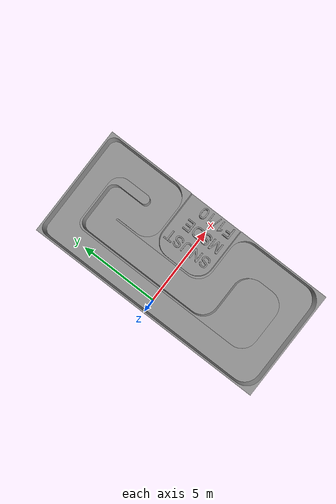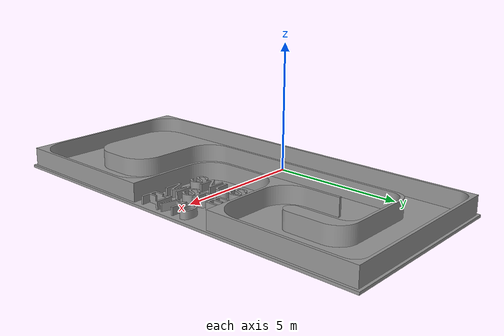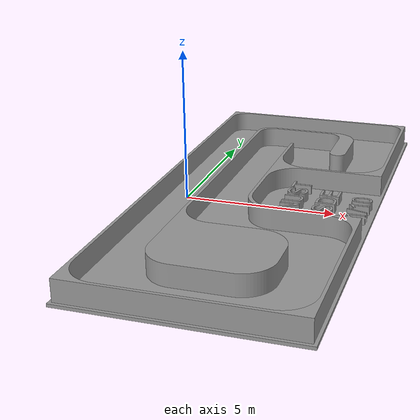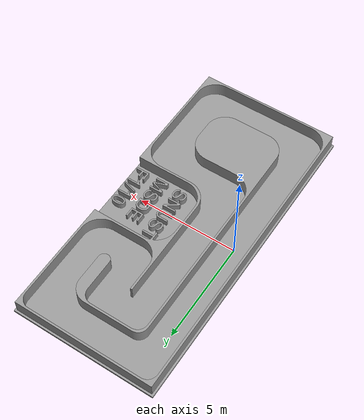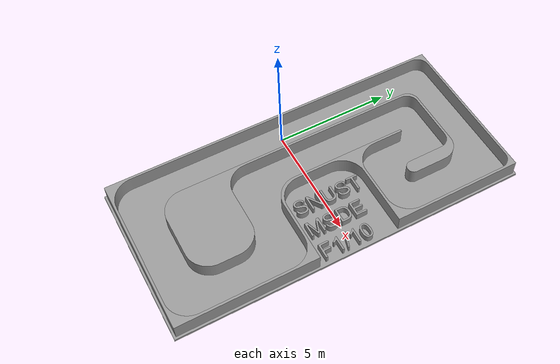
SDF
<?xml version="1.0"?>
<sdf version="1.4">
<world name="track_porto">

  <scene>
    <ambient>0.5 0.5 0.5 1.0</ambient>
    <shadows>0</shadows>
  </scene>

  <include>
    <uri>model://sun</uri>
    <pose>0.0 0.0 15.0 0 0 0</pose>
    <cast_shadows>false</cast_shadows>
    <attenuation>
      <constant>0.5</constant>
      <linear>0.01</linear>
      <quadratic>0.0</quadratic>
      <range>100</range>
    </attenuation>
  </include>

  <light type="point" name="Light 1">
              <pose>0 0 15 0 0 0</pose>
              <diffuse>.9 .9 .9 1</diffuse>
              <specular>.1 .1 .1 1</specular>
              <attenuation>
              <constant>0.5</constant>
              <linear>0.01</linear>
              <quadratic>0.0</quadratic>
              <range>50</range>
              </attenuation>
              <direction>0 0 -1</direction>
              <cast_shadows>false</cast_shadows>
  </light>

  <include>
    <uri>model://models/italy_track</uri>
    <pose>0 0 0 0 0 0</pose>
    <name>porto_track</name>
  </include>

</world>
</sdf>

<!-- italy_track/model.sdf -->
<sdf version='1.6'>
  <model name='italy_track'>
    <link name='ground'>
      <pose frame=''>0 0 0 0 -0 0</pose>
      <inertial>
        <mass>1</mass>
        <inertia>
          <ixx>0.166667</ixx>
          <ixy>0</ixy>
          <ixz>0</ixz>
          <iyy>0.166667</iyy>
          <iyz>0</iyz>
          <izz>0.166667</izz>
        </inertia>
        <pose frame=''>0 0 0 0 -0 0</pose>
      </inertial>
      <gravity>1</gravity>
      <self_collide>0</self_collide>
      <kinematic>0</kinematic>
      <visual name='visual'>
        <pose frame=''>-0.8 -7.6 0 0 -0 0</pose>
        <geometry>
          <mesh>
            <uri>file://meshes/ground2.dae</uri>
            <scale>0.01 0.01 0.01</scale>
          </mesh>
        </geometry>
        <material>
          <lighting>1</lighting>
          <script>
            <uri>file://media/materials/scripts/gazebo.material</uri>
            <name>Gazebo/Gray</name>
          </script>
          <ambient>0 0 0 1</ambient>
          <diffuse>0 0 0 1</diffuse>
          <specular>0.01 0.01 0.01 1</specular>
          <emissive>0 0 0 1</emissive>
          <shader type='vertex'>
            <normal_map>__default__</normal_map>
          </shader>
        </material>
        <cast_shadows>1</cast_shadows>
        <transparency>0</transparency>
      </visual>
      <collision name='collision'>
        <laser_retro>0</laser_retro>
        <max_contacts>10</max_contacts>
        <pose frame=''>-0.8 -7.6 0 0 -0 0</pose>
        <geometry>
          <mesh>
            <uri>file://meshes/ground2.dae</uri>
            <scale>0.01 0.01 0.01</scale>
          </mesh>
        </geometry>
        <surface>
          <friction>
            <ode>
              <mu>1</mu>
              <mu2>1</mu2>
              <fdir1>0 0 0</fdir1>
              <slip1>0</slip1>
              <slip2>0</slip2>
            </ode>
            <torsional>
              <coefficient>1</coefficient>
              <patch_radius>0</patch_radius>
              <surface_radius>0</surface_radius>
              <use_patch_radius>1</use_patch_radius>
              <ode>
                <slip>0</slip>
              </ode>
            </torsional>
          </friction>
          <bounce>
            <restitution_coefficient>0</restitution_coefficient>
            <threshold>1e+06</threshold>
          </bounce>
          <contact>
            <collide_without_contact>0</collide_without_contact>
            <collide_without_contact_bitmask>1</collide_without_contact_bitmask>
            <collide_bitmask>1</collide_bitmask>
            <ode>
              <soft_cfm>0</soft_cfm>
              <soft_erp>0.2</soft_erp>
              <kp>1e+13</kp>
              <kd>1</kd>
              <max_vel>0.01</max_vel>
              <min_depth>0</min_depth>
            </ode>
            <bullet>
              <split_impulse>1</split_impulse>
              <split_impulse_penetration_threshold>-0.01</split_impulse_penetration_threshold>
              <soft_cfm>0</soft_cfm>
              <soft_erp>0.2</soft_erp>
              <kp>1e+13</kp>
              <kd>1</kd>
            </bullet>
          </contact>
        </surface>
      </collision>
    </link>
    <link name='track'>
      <pose frame=''>0 0 0 0 -0 0</pose>
      <inertial>
        <mass>1</mass>
        <inertia>
          <ixx>0.166667</ixx>
          <ixy>0</ixy>
          <ixz>0</ixz>
          <iyy>0.166667</iyy>
          <iyz>0</iyz>
          <izz>0.166667</izz>
        </inertia>
        <pose frame=''>0 0 0 0 -0 0</pose>
      </inertial>
      <gravity>1</gravity>
      <self_collide>0</self_collide>
      <kinematic>0</kinematic>
      <visual name='visual'>
        <pose frame=''>-0.8 -7.6 0 0 -0 0</pose>
        <geometry>
          <mesh>
            <uri>file://meshes/italy_track_15.dae</uri>
            <scale>0.01 0.01 0.01</scale>
          </mesh>
        </geometry>
        <material>
          <lighting>1</lighting>
          <script>
            <uri>file://media/materials/scripts/gazebo.material</uri>
            <name>Gazebo/Grey</name>
          </script>
          <ambient>0.3 0.3 0.3 1</ambient>
          <diffuse>0.7 0.7 0.7 1</diffuse>
          <specular>0.01 0.01 0.01 1</specular>
          <emissive>0 0 0 1</emissive>
          <shader type='vertex'>
            <normal_map>__default__</normal_map>
          </shader>
        </material>
        <cast_shadows>1</cast_shadows>
        <transparency>0</transparency>
      </visual>
      <collision name='collision'>
        <laser_retro>0</laser_retro>
        <max_contacts>10</max_contacts>
        <pose frame=''>-0.8 -7.6 0 0 -0 0</pose>
        <geometry>
          <mesh>
            <uri>file://meshes/italy_track_15.dae</uri>
            <scale>0.01 0.01 0.01</scale>
          </mesh>
        </geometry>
        <surface>
          <friction>
            <ode>
              <mu>1</mu>
              <mu2>1</mu2>
              <fdir1>0 0 0</fdir1>
              <slip1>0</slip1>
              <slip2>0</slip2>
            </ode>
            <torsional>
              <coefficient>1</coefficient>
              <patch_radius>0</patch_radius>
              <surface_radius>0</surface_radius>
              <use_patch_radius>1</use_patch_radius>
              <ode>
                <slip>0</slip>
              </ode>
            </torsional>
          </friction>
          <bounce>
            <restitution_coefficient>0</restitution_coefficient>
            <threshold>1e+06</threshold>
          </bounce>
          <contact>
            <collide_without_contact>0</collide_without_contact>
            <collide_without_contact_bitmask>1</collide_without_contact_bitmask>
            <collide_bitmask>1</collide_bitmask>
            <ode>
              <soft_cfm>0</soft_cfm>
              <soft_erp>0.2</soft_erp>
              <kp>1e+13</kp>
              <kd>1</kd>
              <max_vel>0.01</max_vel>
              <min_depth>0</min_depth>
            </ode>
            <bullet>
              <split_impulse>1</split_impulse>
              <split_impulse_penetration_threshold>-0.01</split_impulse_penetration_threshold>
              <soft_cfm>0</soft_cfm>
              <soft_erp>0.2</soft_erp>
              <kp>1e+13</kp>
              <kd>1</kd>
            </bullet>
          </contact>
        </surface>
      </collision>
    </link>
    <static>1</static>
    <allow_auto_disable>1</allow_auto_disable>
  </model>
</sdf>
